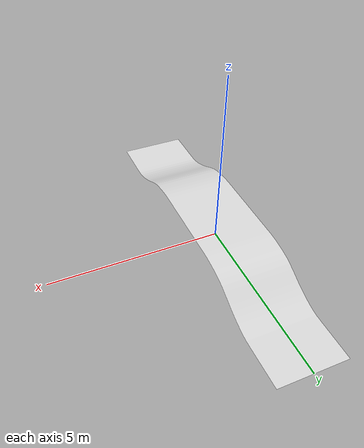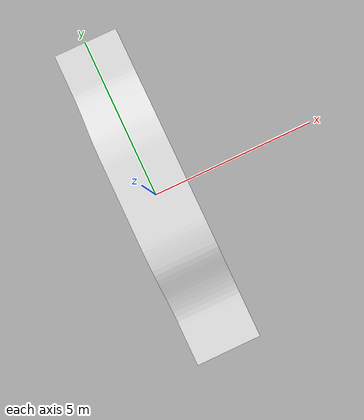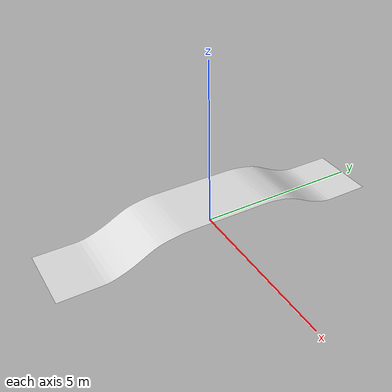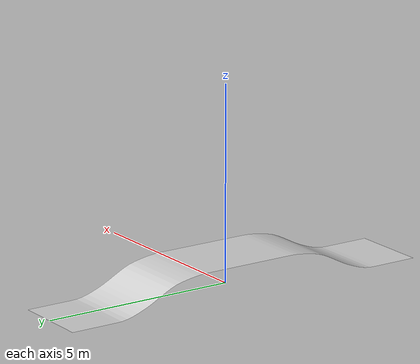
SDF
<?xml version="1.0" ?>
<sdf version="1.5">
  <model name="concrete">
    <pose>0 0 0 0 0 0</pose>
    <static>true</static>
    <link name="body">
      <visual name="visual">
        <geometry>
          <mesh><uri>model://concrete/media/concrete.dae</uri></mesh>
        </geometry>
	<material>
          <script>
            <uri>model://concrete/media/scripts</uri>
            <uri>model://concrete/media/Textures</uri>
            <name>RepeatedGrass/Diffuse</name>
          </script>
        </material>
      </visual>
      <collision name="collision">
        <geometry>
          <mesh><uri>model://concrete/media/concrete.dae</uri></mesh>
        </geometry>
      </collision>
    </link>
  </model>
</sdf>
